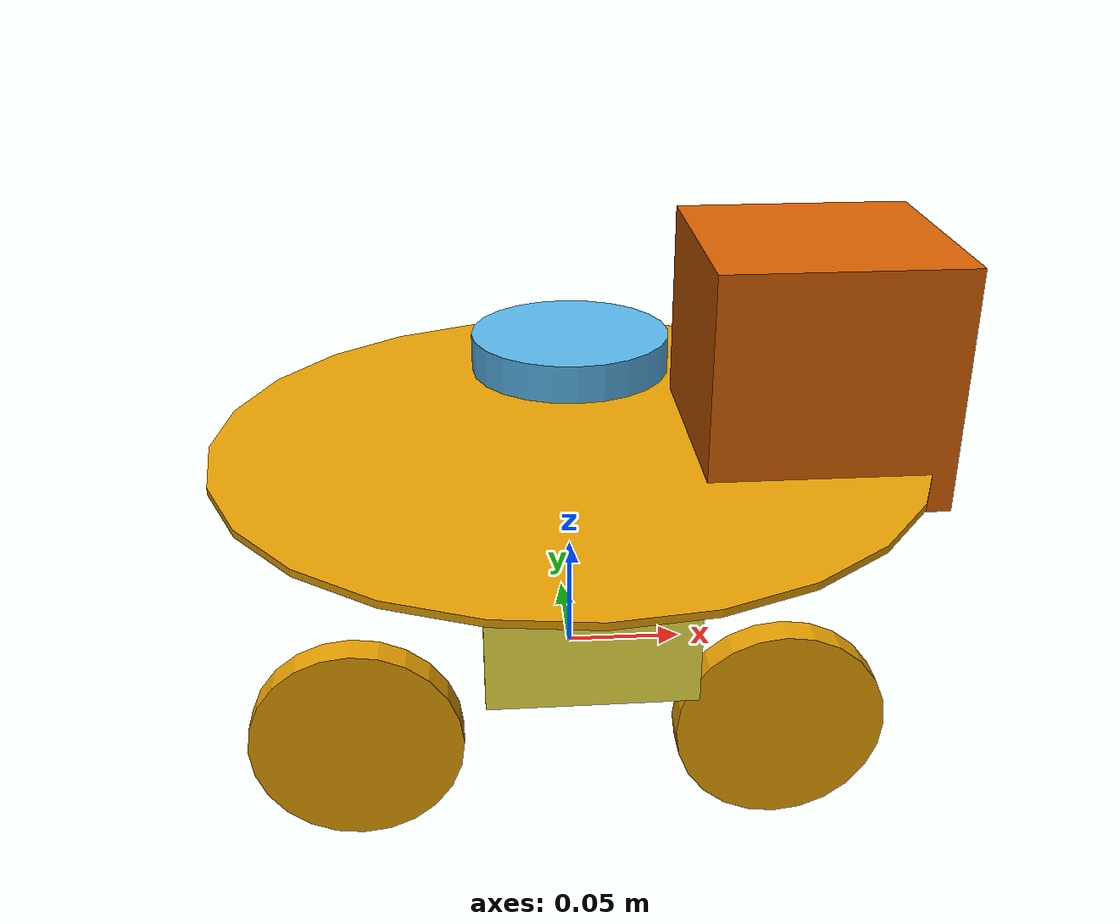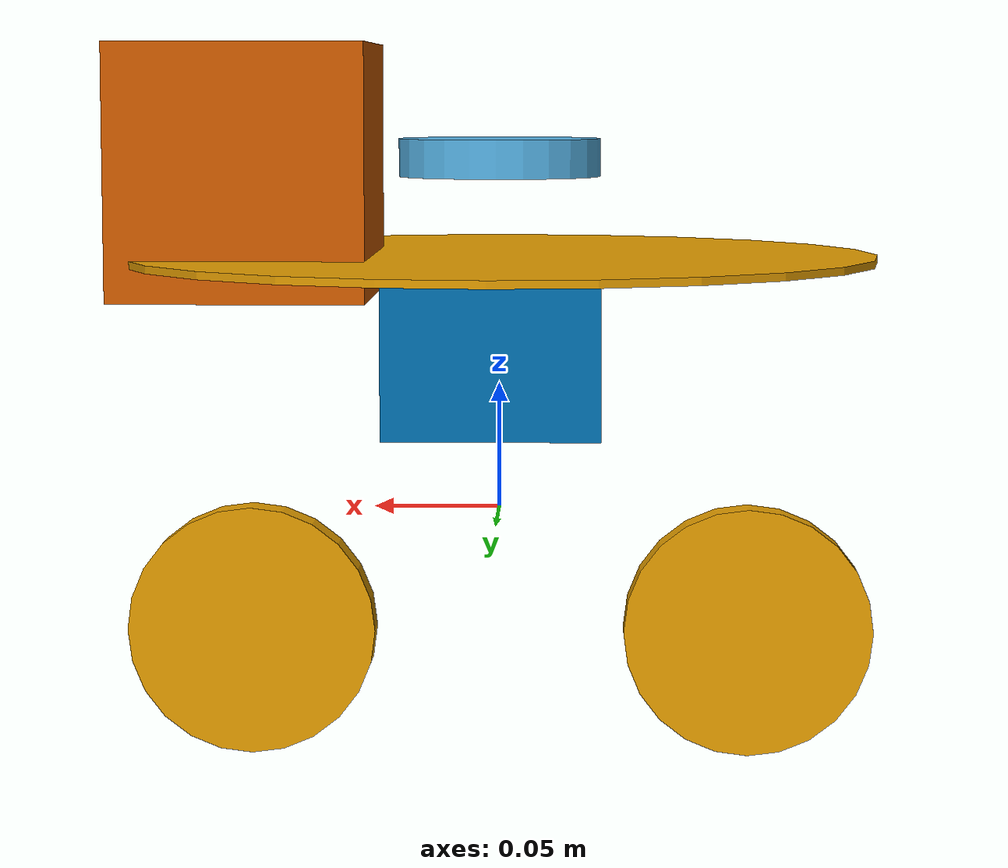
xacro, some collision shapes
<?xml version="1.0"?>
<robot name="bookle" xmlns:xacro="http://www.ros.org/wiki/xacro">

	<!-- Constants for robot dimensions -->
	<xacro:property name="PI" value="3.1415926535897931"/>

	<!-- Import all Gazebo-customization elements, including Gazebo colors -->
	<xacro:include filename="$(find bookle_description)/urdf/bookle.gazebo" />

	<link name="chassis">
		<collision name="collision">
			<origin xyz="0 0 .1" rpy="0 0 0" />
			<geometry>
				<cylinder radius="0.15" length="0.003" />
			</geometry>
		</collision>

		<visual name="visual">
			<origin xyz="0 0 .1" rpy="0 0 0" />
			<geometry>
				<cylinder radius="0.15" length="0.003" />
			</geometry>
		</visual>

		<collision name="front_caster_collision">
			<origin xyz="0.1 0 -0.05" rpy="0 1.5707 1.5707" />
			<geometry>
				<cylinder radius="0.05" length="0.015" />
			</geometry>
		</collision>

		<visual name="front_caster_visual">
			<origin xyz="0.1 0 -0.05" rpy="0 1.5707 1.5707" />
			<geometry>
				<cylinder radius="0.05" length="0.015" />
			</geometry>
		</visual>

		<collision name="back_caster_collision">
			<origin xyz="-0.1 0 -0.05" rpy="0 1.5707 1.5707" />
			<geometry>
				<cylinder radius="0.05" length="0.015" />
			</geometry>
		</collision>

		<visual name="back_caster_visual">
			<origin xyz="-0.1 0 -0.05" rpy="0 1.5707 1.5707" />
			<geometry>
				<cylinder radius="0.05" length="0.015" />
			</geometry>
		</visual>
	</link>

	<link name="left_wheel">
		<origin xyz="0 .1 .04" rpy="0 1.5707 1.5707" />
		<collision name="collision">
			<geometry>
				<cylinder radius="0.04" length="0.015" />
			</geometry>
		</collision>
		<visual name="visual">
			<geometry>
				<cylinder radius="0.04" length="0.015" />
			</geometry>
		</visual>
	</link>

	<link name="right_wheel">
		<origin xyz="0 -0.1 .04" rpy="0 1.5707 1.5707" />
		<collision name="collision">
			<geometry>
				<cylinder radius="0.04" length="0.015" />
			</geometry>
		</collision>
		<visual name="visual">
			<geometry>
				<cylinder radius="0.04" length="0.015" />
			</geometry>
		</visual>
	</link>

	<link name="left_frame">
		<origin xyz="0 -0.1 0.1" rpy="0 0 0" />
		<collision name="left_collision">
			<origin xyz="0 0.0075 -0.03" rpy="0 0 0" />
			<geometry>
				<box size=".08 .002 .06" />
			</geometry>
		</collision>
		<visual name="left_visual">
			<origin xyz="0 .0075 -0.03" rpy="0 0 0" />
			<geometry>
				<box size=".08 .002 .06" />
			</geometry>
		</visual>

		<collision name="right_collision">
			<origin xya="0 -0.0075 -0.03" rpy="0 0 0"/>
			<geometry>
				<box size=".08 .002 .06" />
			</geometry>
		</collision>
		<visual name="right_visual">
			<origin xyz="0 -0.0075 -0.03" rpy="0 0 0" />
			<geometry>
				<box size=".08 .002 .06" />
			</geometry>
		</visual>
	</link>

	<link name="right_frame">
		<origin xyz="0 0.1 0.1" rpy="0 0 0" />
		<collision name="left_collision">
			<origin xyz="0 .0075 -0.03" rpy="0 0 0" />
			<geometry>
				<box size=".08 .002 .06" />
			</geometry>
		</collision>
		<visual name="left_visual">
			<origin xyz="0 .0075 -0.03" rpy="0 0 0" />
			<geometry>
				<box size=".08 .002 .06" />
			</geometry>
		</visual>

		<collision name="right_collision">
			<origin xyz="0 -0.0075 -0.03" rpy="0 0 0" />
			<geometry>
				<box size=".08 .002 .06" />
			</geometry>
		</collision>
		<visual name="right_visual">
			<origin xyz="0 -0.0075 -0.03" rpy="0 0 0" />
			<geometry>
				<box size=".08 .002 .06" />
			</geometry>
		</visual>
	</link>

	<joint type="revolute" name="left_wheel_hinge">
		<origin xyz="0 .1 .04" rpy="0 0 0" />
		<child link="left_wheel" />
		<parent link="left_frame" />
		<axis xyz="0 1 0" />
		<limit effort="30" velocity="0.5" lower="-3.14" upper="3.14"/>
	</joint>

	<joint type="revolute" name="right_wheel_hinge">
		<origin xyz="0 -0.1 .04" rpy="0 0 0" />
		<child link="right_wheel" />
		<parent link="right_frame" />
		<axis xyz="0 1 0" />
		<limit effort="30" velocity="0.5" lower="-3.14" upper="3.14"/>
	</joint>

	<joint type="fixed" name="left_frame_joint">
		<origin xyz="0 -0.1 0.1" rpy="0 0 0" />
		<child link="left_frame" />
		<parent link="chassis" />
		<axis xyz="1 0 0" />
	</joint>

	<joint type="fixed" name="right_frame_joint">
		<origin xyz="0 0.1 0.1" rpy="0 0 0" />
		<child link="right_frame" />
		<parent link="chassis" />
		<axis xyz="1 0 0" />
	</joint>

	<joint name="hokuyo_joint" type="fixed">
		<axis xyz="0 1 0" />
		<origin xyz="0.1 0 0.135" rpy="0 0 0"/>
		<parent link="chassis"/>
		<child link="hokuyo_link"/>
	</joint>

	<!-- Hokuyo Laser -->
	<link name="hokuyo_link">
		<collision>
			<origin xyz="0 0 0" rpy="0 0 0"/>
			<geometry>
				<box size="0.1 0.1 0.1"/>
			</geometry>
		</collision>

		<visual>
			<origin xyz="0 0 0" rpy="0 0 0"/>
			<geometry>
				<mesh filename="package://bookle_description/meshes/hokuyo.dae"/>
			</geometry>
		</visual>

		<inertial>
			<mass value="1e-5" />
			<origin xyz="0 0 0" rpy="0 0 0"/>
			<inertia ixx="1e-6" ixy="0" ixz="0" iyy="1e-6" iyz="0" izz="1e-6" />
		</inertial>
	</link>

	<transmission name="tran1">
		<type>transmission_interface/SimpleTransmission</type>
		<joint name="joint1">
			<hardwareInterface>EffortJointInterface</hardwareInterface>
		</joint>
		<actuator name="motor1">
			<hardwareInterface>EffortJointInterface</hardwareInterface>
			<mechanicalReduction>1</mechanicalReduction>
		</actuator>
	</transmission>

	<transmission name="tran2">
		<type>transmission_interface/SimpleTransmission</type>
		<joint name="joint2">
			<hardwareInterface>EffortJointInterface</hardwareInterface>
		</joint>
		<actuator name="motor2">
			<hardwareInterface>EffortJointInterface</hardwareInterface>
			<mechanicalReduction>1</mechanicalReduction>
		</actuator>
	</transmission>
</robot>
